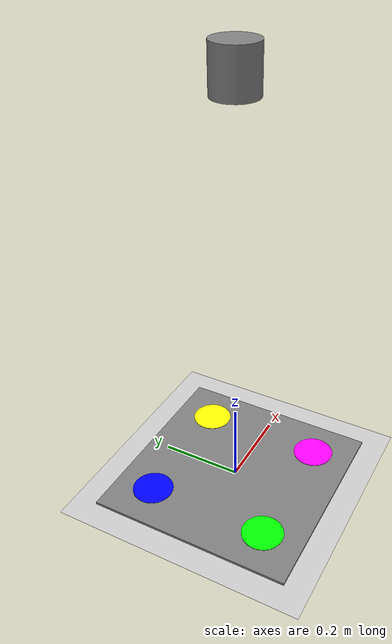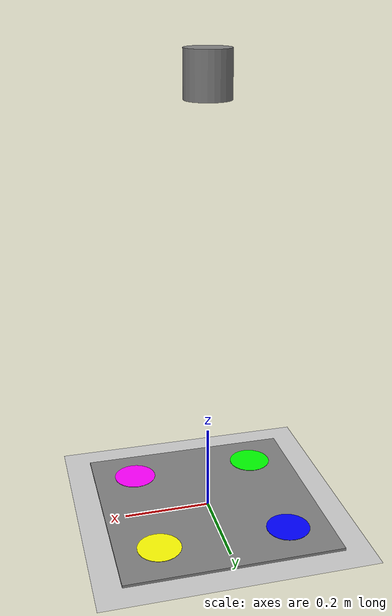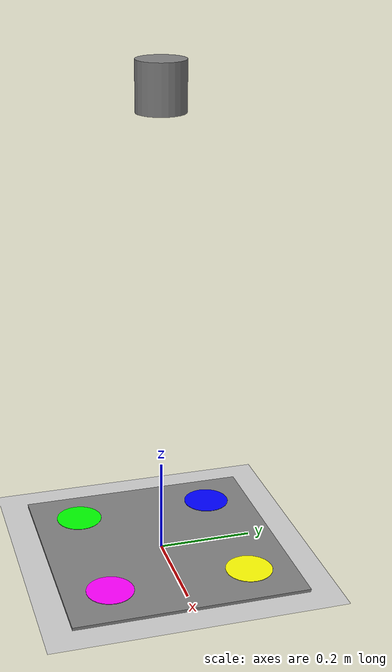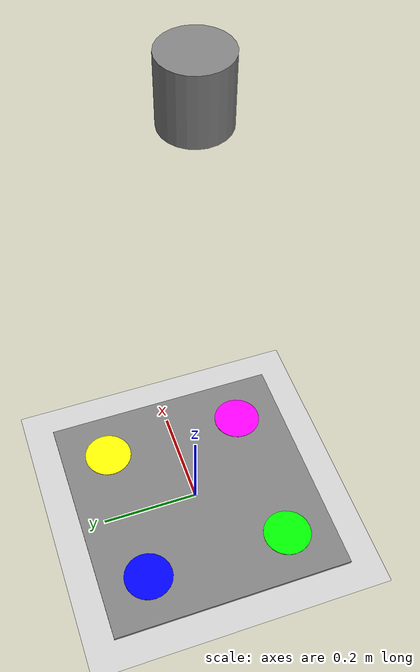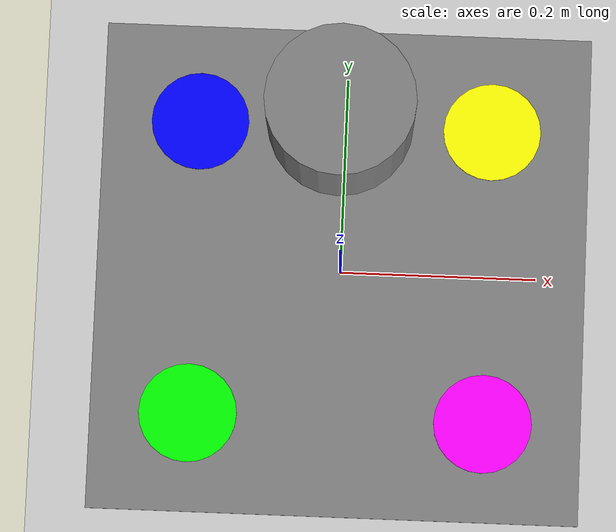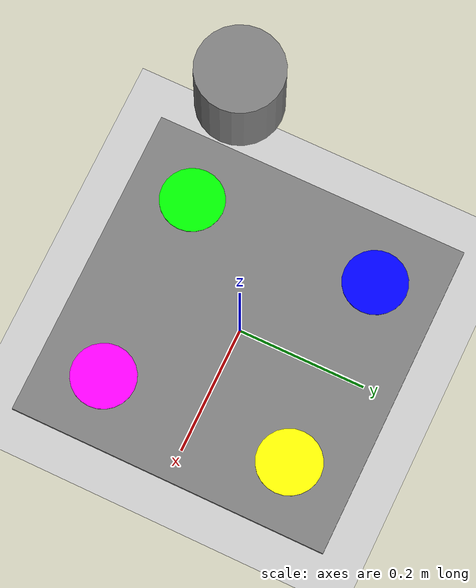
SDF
<?xml version="1.0" ?>
<sdf version="1.4">
  <world name="default">
  <scene>
    <shadows>0</shadows>
  </scene>
    <include>
      <uri>model://ground_plane</uri>
    </include>
    <include>
      <uri>model://sun</uri>
    </include>
  <model name="camera">
    <pose>0 0 1.0 0 1.57 0</pose>
    <link name="camera_link">
      <gravity>false</gravity>
      <visual name="camera_visual">
        <pose>0 0 0 0 1.57 0</pose>
        <geometry>
          <cylinder>
            <length>0.1</length>
            <radius>0.05</radius>
          </cylinder>
        </geometry>
        <material>
          <ambient>0.5 0.5 0.5 1</ambient>
          <diffuse>0.5 0.5 0.5 1</diffuse>
          <specular>0 0 0 0</specular>
          <emissive>0 0 0 1</emissive>
        </material>
      </visual>
      <sensor name='camera1' type='camera'>
        <camera name="head">
          <horizontal_fov>1.4</horizontal_fov>
          <image>
            <width>800</width>
            <height>600</height>
            <format>R8G8B8</format>
          </image>
          <clip>
            <near>0.02</near>
            <far>300</far>
          </clip>
        </camera>
        <always_on>1</always_on>
        <update_rate>30</update_rate>
        <visualize>1</visualize>
        <plugin name="camera_controller" filename="libgazebo_ros_camera.so">
        <alwaysOn>true</alwaysOn>
        <updateRate>0.0</updateRate>
        <cameraName>camera</cameraName>
        <imageTopicName>image_raw</imageTopicName>
        <cameraInfoTopicName>camera_info</cameraInfoTopicName>
        <frameName>camera_link</frameName>
        <hackBaseline>0.0</hackBaseline>
        <distortionK1>0.0</distortionK1>
        <distortionK2>0.0</distortionK2>
        <distortionK3>0.0</distortionK3>
        <distortionT1>0.0</distortionT1>
        <distortionT2>0.0</distortionT2>
      </plugin>
      </sensor>
    </link>
  </model >

  <model name="target">
    <link name="target_link">
      <gravity>false</gravity>
      <visual name="target_visual">
        <pose>0 0 0 0 0 0</pose>
        <geometry>
          <box>
            <size>0.5 0.5 0.01</size>
          </box>
        </geometry>
        <material>
          <ambient>0.5 0.5 0.5 1</ambient>
          <diffuse>0.5 0.5 0.5 1</diffuse>
          <specular>0 0 0 0</specular>
          <emissive>0 0 0 1</emissive>
        </material>
      </visual>
      <visual name="camera_p1">
        <pose>0.15 -0.15 0.01 0 0 0</pose>
        <geometry>
          <cylinder>
            <length>0.001</length>
            <radius>0.05</radius>
          </cylinder>
        </geometry>
        <material>
          <ambient>1.0 0.0 1.0 1</ambient>
          <diffuse>1.0 0.0 1.0 1</diffuse>
          <specular>0 0 0 0</specular>
          <emissive>0 0 0 1</emissive>
        </material>
      </visual>
      <visual name="camera_p2">
        <pose>-0.15 -0.15 0.01 0 0 0</pose>
        <geometry>
          <cylinder>
            <length>0.001</length>
            <radius>0.05</radius>
          </cylinder>
        </geometry>
        <material>
          <ambient>0.0 1.0 0.0 1</ambient>
          <diffuse>0.0 1.0 0.0 1</diffuse>
          <specular>0 0 0 0</specular>
          <emissive>0 0 0 1</emissive>
        </material>
      </visual>
      <visual name="camera_p3">
        <pose>-0.15 0.15 0.01 0 0 0</pose>
        <geometry>
          <cylinder>
            <length>0.001</length>
            <radius>0.05</radius>
          </cylinder>
        </geometry>
        <material>
          <ambient>0.0 0.0 1.0 1</ambient>
          <diffuse>0.0 0.0 1.0 1</diffuse>
          <specular>0 0 0 0</specular>
          <emissive>0 0 0 1</emissive>
        </material>
      </visual>
      <visual name="camera_p4">
        <pose>0.15 0.15 0.01 0 0 0</pose>
        <geometry>
          <cylinder>
            <length>0.001</length>
            <radius>0.05</radius>
          </cylinder>
        </geometry>
        <material>
          <ambient>1.0 1.0 0.0 1</ambient>
          <diffuse>1.0 1.0 0.0 1</diffuse>
          <specular>0 0 0 0</specular>
          <emissive>0 0 0 1</emissive>
        </material>
      </visual>
    </link>
  </model>
  </world>
</sdf>
